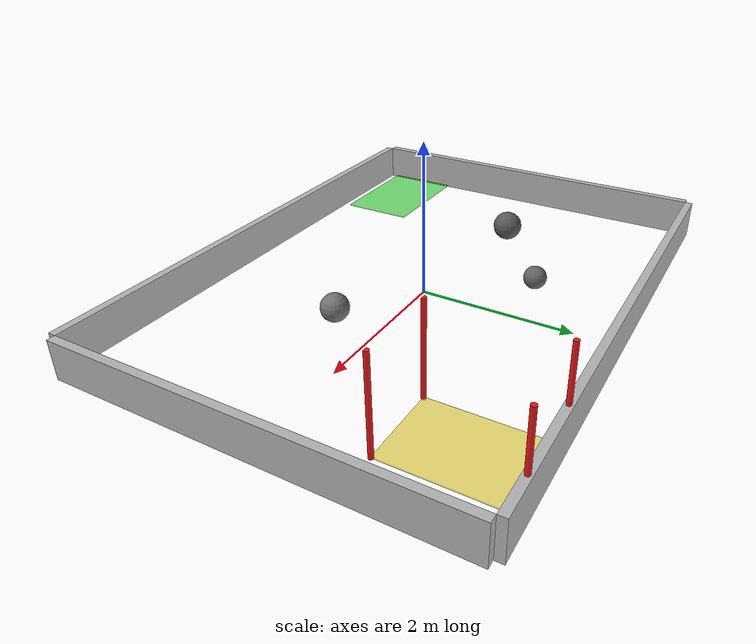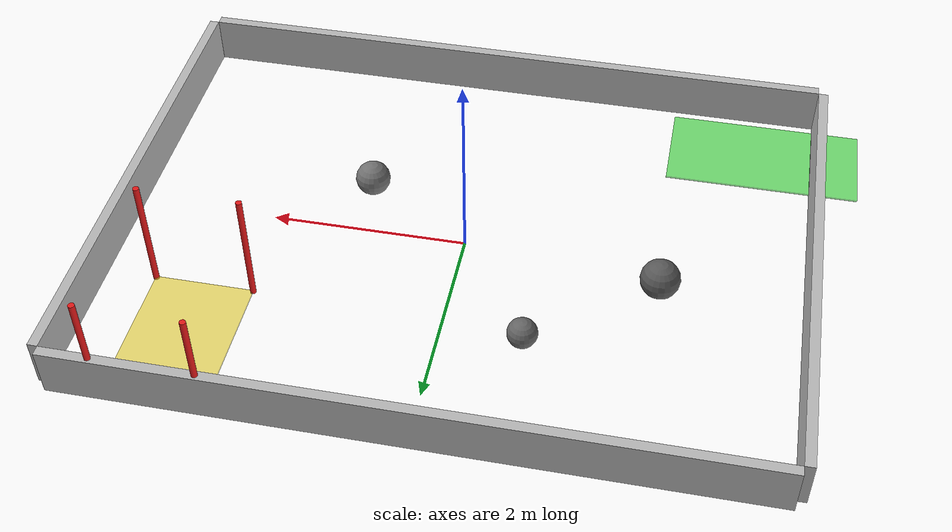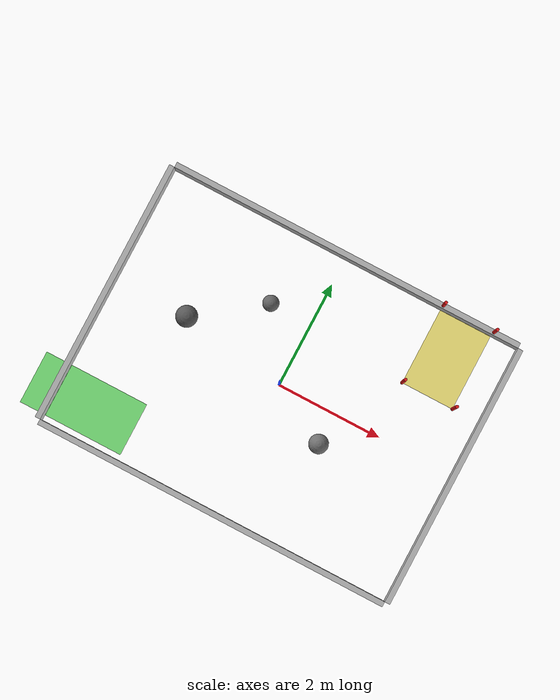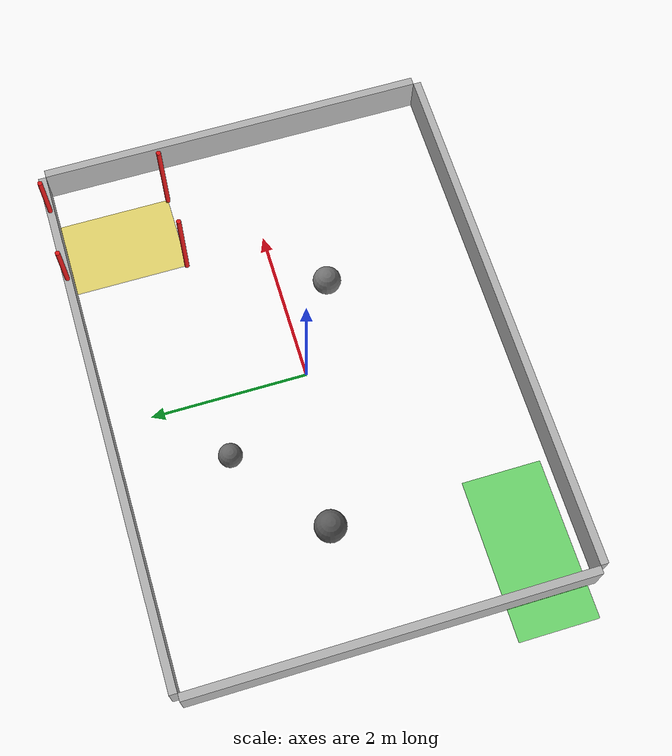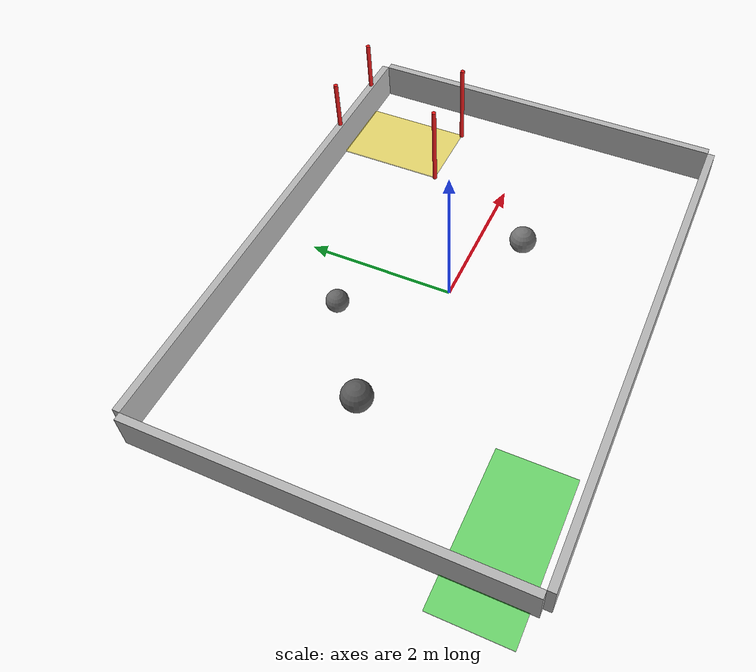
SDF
<sdf version="1.10">
 <world name="lunabotics_field">
  <physics name="bullet" type="bullet">
   <max_step_size>0.001</max_step_size>
   <real_time_update_rate>1000</real_time_update_rate>
  </physics>
  <light name="sun" type="directional">
   <pose>0 0 10 0 0 0</pose>
   <diffuse>1 1 1 1</diffuse>
   <specular>0.1 0.1 0.1 1</specular>
   <attenuation>
    <range>1000</range>
    <constant>0.9</constant>
    <linear>0.01</linear>
    <quadratic>0.001</quadratic>
   </attenuation>
   <direction>-0.5 0.1 -1</direction>
  </light>
  <model name="wall_north">
   <static>true</static>
   <pose>0  2.55 0.25 0 0 0</pose>
   <link name="link">
    <collision name="c"><geometry><box><size>6.8 0.1 0.5</size></box></geometry></collision>
    <visual name="v"><geometry><box><size>6.8 0.1 0.5</size></box></geometry></visual>
   </link>
  </model>
  <model name="wall_south">
   <static>true</static>
   <pose>0 -2.55 0.25 0 0 0</pose>
   <link name="link">
    <collision name="c"><geometry><box><size>6.8 0.1 0.5</size></box></geometry></collision>
    <visual name="v"><geometry><box><size>6.8 0.1 0.5</size></box></geometry></visual>
   </link>
  </model>
  <model name="wall_east">
   <static>true</static>
   <pose>3.45 0 0.25 0 0 0</pose>
   <link name="link">
    <collision name="c"><geometry><box><size>0.1 5.0 0.5</size></box></geometry></collision>
    <visual name="v"><geometry><box><size>0.1 5.0 0.5</size></box></geometry></visual>
   </link>
  </model>
  <model name="wall_west">
   <static>true</static>
   <pose>-3.45 0 0.25 0 0 0</pose>
   <link name="link">
    <collision name="c"><geometry><box><size>0.1 5.0 0.5</size></box></geometry></collision>
    <visual name="v"><geometry><box><size>0.1 5.0 0.5</size></box></geometry></visual>
   </link>
  </model>
  <model name="start_zone">
   <static>true</static>
   <pose>-2.9 -1.9 0.01 0 0 0</pose>
   <link name="link">
    <collision name="c"><geometry><box><size>2.0 1.0 0.02</size></box></geometry></collision>
    <visual name="v">
     <geometry><box><size>2.0 1.0 0.02</size></box></geometry>
     <material><diffuse>0.1 0.8 0.1 0.6</diffuse></material>
    </visual>
   </link>
  </model>
  <model name="brim_pad">
   <static>true</static>
   <pose>2.4 1.8 0.01 0 0 0</pose>
   <link name="link">
    <visual name="v">
     <geometry><box><size>1.0 1.5 0.02</size></box></geometry>
     <material><diffuse>0.9 0.8 0.1 0.6</diffuse></material>
    </visual>
   </link>
  </model>
  <model name="brim_pole_1">
   <static>true</static>
   <pose>2.9 2.55 0.6 0 0 0</pose>
   <link name="link">
    <collision name="c">
     <geometry><cylinder><radius>0.03</radius><length>1.2</length></cylinder></geometry>
    </collision>
    <visual name="v">
     <geometry><cylinder><radius>0.03</radius><length>1.2</length></cylinder></geometry>
     <material><diffuse>0.9 0.1 0.1 1</diffuse></material>
    </visual>
   </link>
  </model>
  <model name="brim_pole_2">
   <static>true</static>
   <pose>1.9 2.55 0.6 0 0 0</pose>
   <link name="link">
    <collision name="c">
     <geometry><cylinder><radius>0.03</radius><length>1.2</length></cylinder></geometry>
    </collision>
    <visual name="v">
     <geometry><cylinder><radius>0.03</radius><length>1.2</length></cylinder></geometry>
     <material><diffuse>0.9 0.1 0.1 1</diffuse></material>
    </visual>
   </link>
  </model>
  <model name="brim_pole_3">
   <static>true</static>
   <pose>2.9 1.05 0.6 0 0 0</pose>
   <link name="link">
    <collision name="c">
     <geometry><cylinder><radius>0.03</radius><length>1.2</length></cylinder></geometry>
    </collision>
    <visual name="v">
     <geometry><cylinder><radius>0.03</radius><length>1.2</length></cylinder></geometry>
     <material><diffuse>0.9 0.1 0.1 1</diffuse></material>
    </visual>
   </link>
  </model>
  <model name="brim_pole_4">
   <static>true</static>
   <pose>1.9 1.05 0.6 0 0 0</pose>
   <link name="link">
    <collision name="c">
     <geometry><cylinder><radius>0.03</radius><length>1.2</length></cylinder></geometry>
    </collision>
    <visual name="v">
     <geometry><cylinder><radius>0.03</radius><length>1.2</length></cylinder></geometry>
     <material><diffuse>0.9 0.1 0.1 1</diffuse></material>
    </visual>
   </link>
  </model>
  <model name="rock_1">
   <static>true</static>
   <pose>-0.8  1.2 0.15 0 0 0</pose>
   <link name="link">
    <collision name="c"><geometry><sphere><radius>0.15</radius></sphere></geometry></collision>
    <visual name="v">
     <geometry><sphere><radius>0.15</radius></sphere></geometry>
     <material><diffuse>0.4 0.4 0.4 1</diffuse></material>
    </visual>
   </link>
  </model>
  <model name="rock_2">
   <static>true</static>
   <pose>1.1 -0.6 0.18 0 0 0</pose>
   <link name="link">
    <collision name="c"><geometry><sphere><radius>0.18</radius></sphere></geometry></collision>
    <visual name="v">
     <geometry><sphere><radius>0.18</radius></sphere></geometry>
     <material><diffuse>0.45 0.45 0.45 1</diffuse></material>
    </visual>
   </link>
  </model>
  <model name="rock_3">
   <static>true</static>
   <pose>-2.0  0.3 0.20 0 0 0</pose>
   <link name="link">
    <collision name="c"><geometry><sphere><radius>0.20</radius></sphere></geometry></collision>
    <visual name="v">
     <geometry><sphere><radius>0.20</radius></sphere></geometry>
     <material><diffuse>0.35 0.35 0.35 1</diffuse></material>
    </visual>
   </link>
  </model>
 </world>
</sdf>
